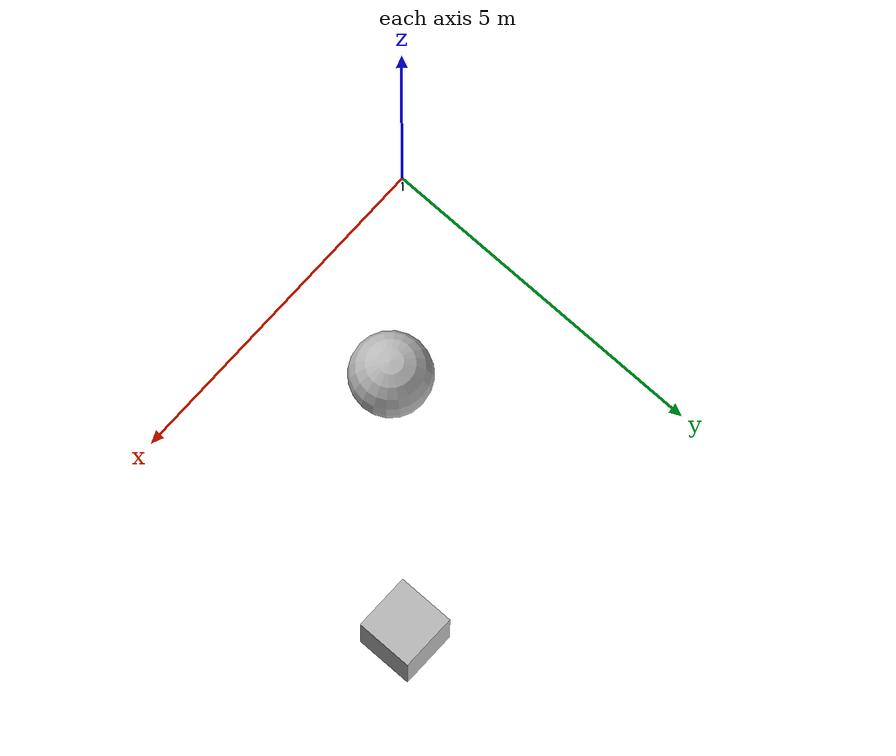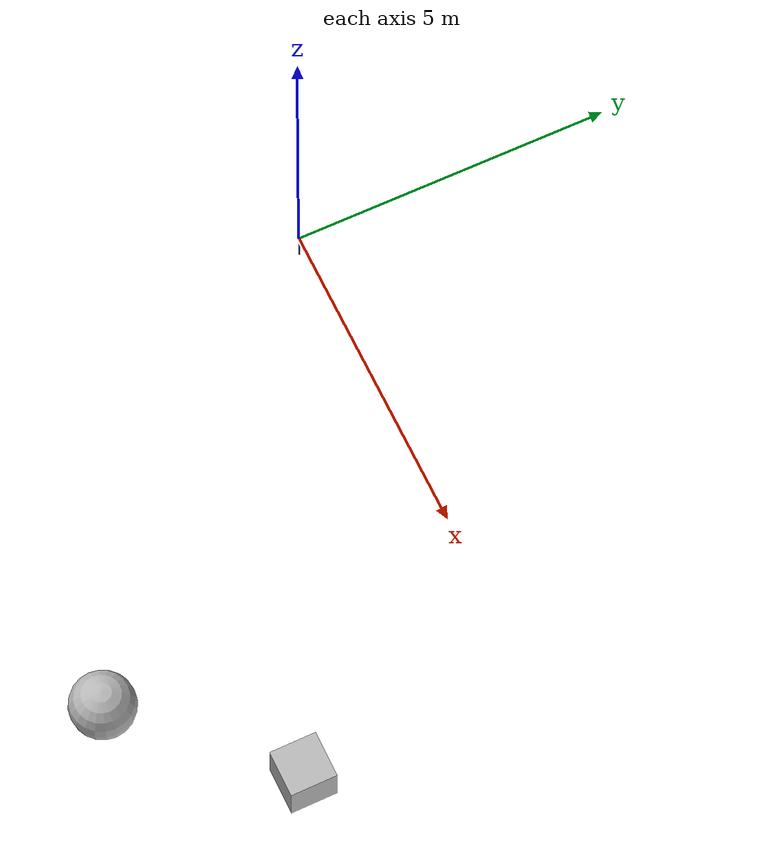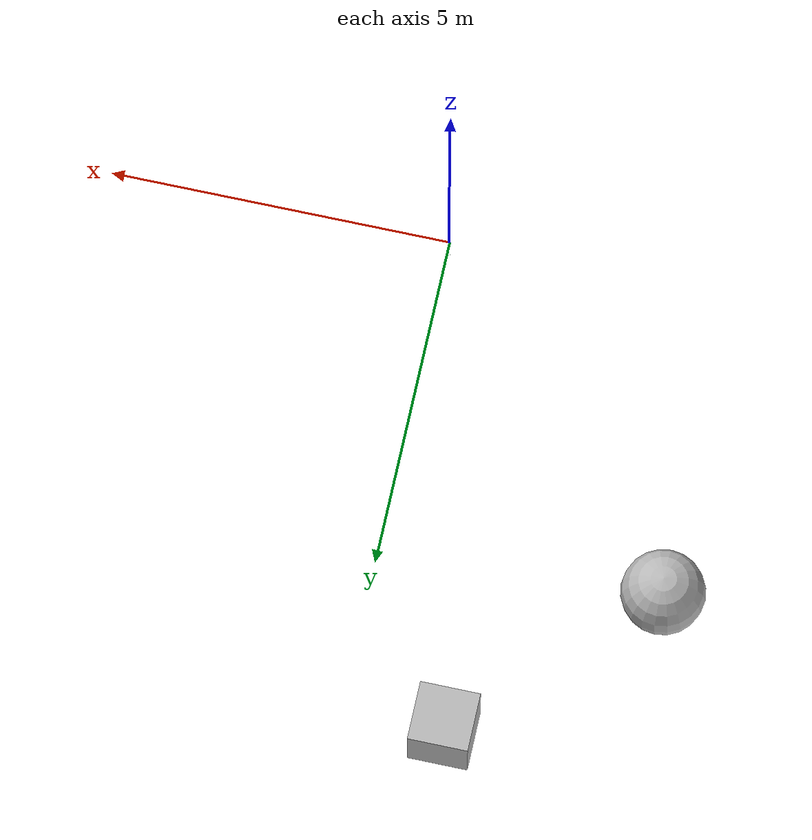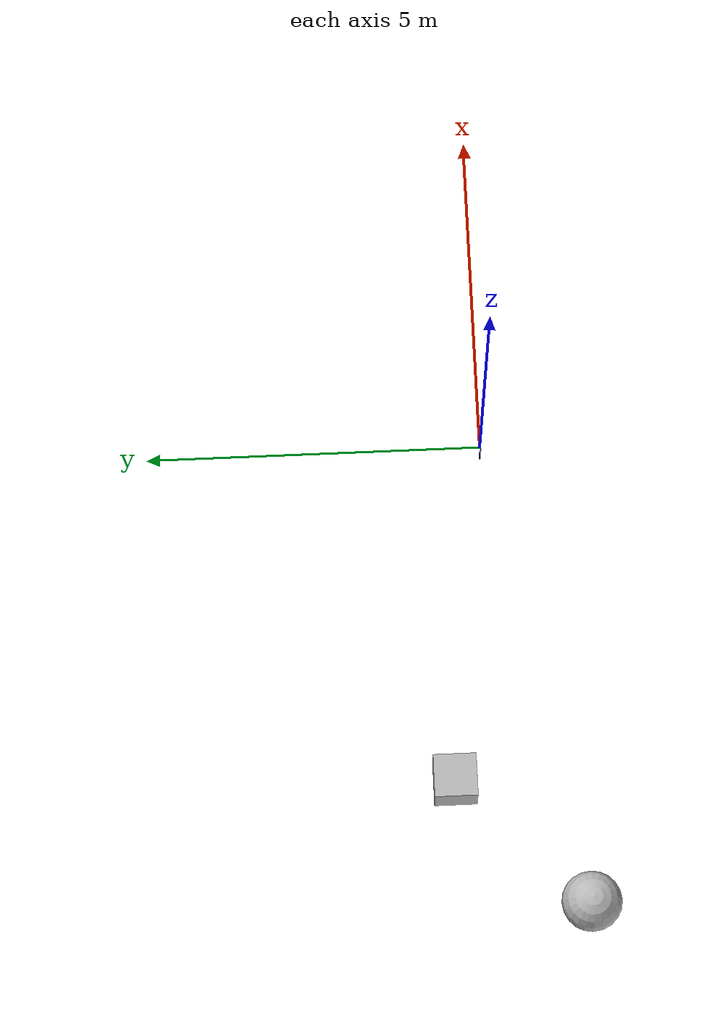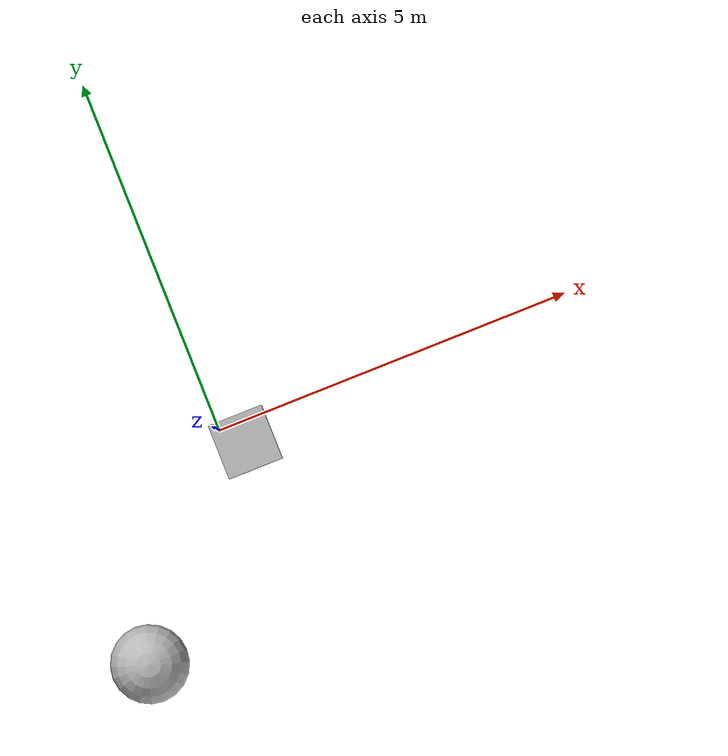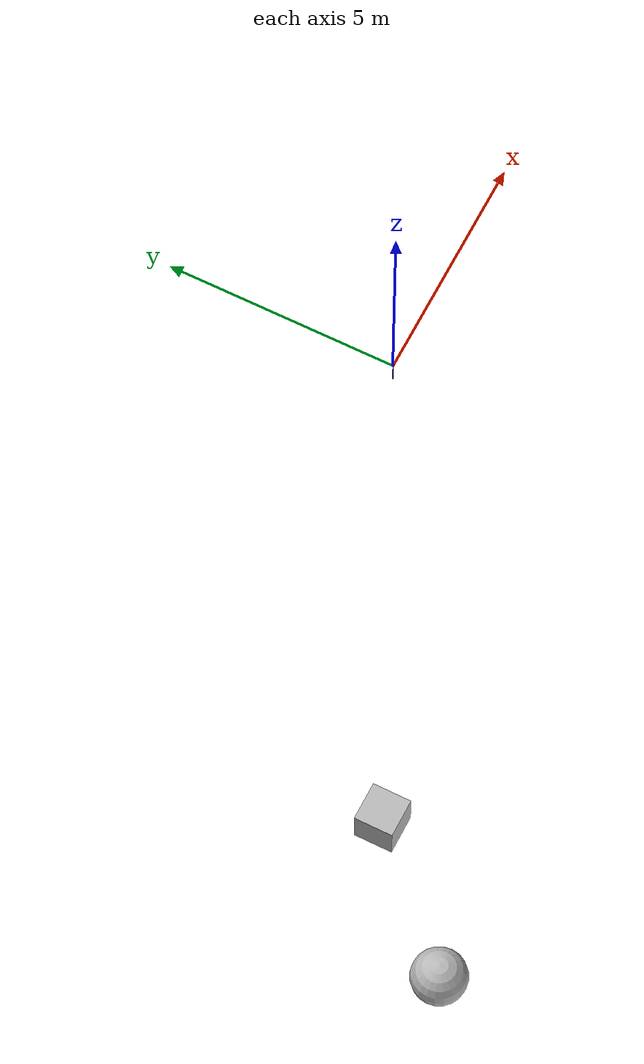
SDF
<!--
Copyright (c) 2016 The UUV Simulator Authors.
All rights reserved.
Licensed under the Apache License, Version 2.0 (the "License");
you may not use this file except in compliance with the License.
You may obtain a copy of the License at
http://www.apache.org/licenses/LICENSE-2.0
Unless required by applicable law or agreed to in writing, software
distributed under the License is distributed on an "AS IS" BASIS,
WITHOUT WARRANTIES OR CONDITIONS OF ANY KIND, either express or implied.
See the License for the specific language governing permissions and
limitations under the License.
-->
<sdf version="1.4">
 <world name="map">
  <physics name="default_physics" default="true" type="ode">
   <max_step_size>0.1</max_step_size>
   <real_time_factor>1</real_time_factor>
   <real_time_update_rate>10</real_time_update_rate>
   <ode><solver><type>quick</type><iters>20</iters><sor>1.4</sor></solver></ode>
  </physics>
  <gravity>0 0 0</gravity>
  <scene>
   <ambient>0.01 0.01 0.01 1.0</ambient>
   <sky><clouds><speed>12</speed></clouds></sky>
   <shadows>1</shadows>
  </scene>
  <model name="box">
   <pose>0 0 -22.5 0 0 0</pose>
   <link name="link">
    <collision name="collision"><geometry><box><size>1 1 1</size></box></geometry></collision>
    <visual name="visual"><geometry><box><size>1 1 1</size></box></geometry></visual>
   </link>
   <plugin name="usbl_transceiver" filename="libtransceiverPlugin.so">
    <namespace>USBL</namespace>
    <transponder_device>trasnponder_manufacturer</transponder_device>
    <transponder_ID>1</transponder_ID>
    <transceiver_device>tranceiver_manufacturer</transceiver_device>
    <transceiver_ID>168</transceiver_ID>
    <enable_ping_scheduler>false</enable_ping_scheduler>
    <transponder_attached_object>sphere</transponder_attached_object>
   </plugin>
   <plugin name="usbl_transponder" filename="libtransponderPlugin.so">
    <namespace>USBL</namespace>
    <transponder_device>trasnponder_manufacturer</transponder_device>
    <transponder_ID>1</transponder_ID>
    <transceiver_device>tranceiver_manufacturer</transceiver_device>
    <transceiver_ID>168</transceiver_ID>
    <mu>0</mu>
    <sigma>0.0</sigma>
   </plugin>
  </model>
  <model name="sphere">
   <pose>-3 -3 -22.5 0 0 0</pose>
   <link name="link">
    <collision name="collision"><geometry><sphere><radius>1</radius></sphere></geometry></collision>
    <visual name="visual"><geometry><sphere><radius>0.7</radius></sphere></geometry></visual>
   </link>
   <plugin name="usbl_transponder" filename="libtransponderPlugin.so">
    <namespace>USBL</namespace>
    <transponder_device>trasnponder_manufacturer</transponder_device>
    <transponder_ID>1</transponder_ID>
    <transceiver_device>tranceiver_manufacturer</transceiver_device>
    <transceiver_ID>168</transceiver_ID>
    <mu>0</mu>
    <sigma>0.0</sigma>
   </plugin>
  </model>
  <spherical_coordinates>
   <latitude_deg>56.71897669633431</latitude_deg>
   <longitude_deg>3.515625</longitude_deg>
  </spherical_coordinates>
  <light type="directional" name="sun1">
   <pose>50 0 150 0 0 0</pose>
   <diffuse>1 1 1 1</diffuse>
   <specular>.1 .1 .1 1</specular>
   <direction>0.3 0.3 -1</direction>
   <cast_shadows>false</cast_shadows>
  </light>
  <light type="directional" name="sun_diffuse">
   <pose>-50 0 -150 0 0 0</pose>
   <diffuse>0.6 0.6 0.6 1</diffuse>
   <specular>0 0 0 1</specular>
   <direction>-0.3 -0.3 -1</direction>
   <cast_shadows>false</cast_shadows>
  </light>
  <include><uri>model://ned_frame</uri></include>
  <plugin name="underwater_current_plugin" filename="libdave_ocean_current_plugin.so">
   <namespace>hydrodynamics</namespace>
   <constant_current>
    <topic>current_velocity</topic>
    <velocity><mean>0</mean><min>0</min><max>5</max><mu>0.0</mu><noiseAmp>0.0</noiseAmp></velocity>
    <horizontal_angle>
     <mean>0</mean>
     <min>-3.141592653589793238</min>
     <max>3.141592653589793238</max>
     <mu>0.0</mu>
     <noiseAmp>0.0</noiseAmp>
    </horizontal_angle>
    <vertical_angle>
     <mean>0</mean>
     <min>-3.141592653589793238</min>
     <max>3.141592653589793238</max>
     <mu>0.0</mu>
     <noiseAmp>0.0</noiseAmp>
    </vertical_angle>
   </constant_current>
   <transient_current>
    <topic_stratified_database>stratified_current_velocity_database</topic_stratified_database>
    <databasefilePath>transientOceanCurrentDatabase.csv</databasefilePath>
   </transient_current>
   <tidal_oscillation>
    <databasefilePath>ACT1951_1_Annual_2021.csv</databasefilePath>
    <mean_direction><ebb>69</ebb><flood>255</flood></mean_direction>
    <world_start_time_GMT>
     <day>4</day>
     <month>3</month>
     <year>2021</year>
     <hour>15</hour>
     <minute>0</minute>
    </world_start_time_GMT>
   </tidal_oscillation>
  </plugin>
  <plugin name="sc_interface" filename="libuuv_sc_ros_interface_plugin.so"/>
 </world>
</sdf>

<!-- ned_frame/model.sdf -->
<sdf version='1.5'>
    <model name="world_ned">

      <pose>0 0 0 0 0 0</pose>
      <static>true</static>

      <link name="world_ned">
        <gravity>0</gravity>
        <pose>0 0 0 3.14159265359 0 1.5707963267948966</pose>

        <visual name="N_visual">
          <pose>0.25 0 0 1.5707963267948966 0 1.5707963267948966</pose>
          <geometry>
            <cylinder>
              <radius>0.01</radius>
              <length>0.5</length>
            </cylinder>
          </geometry>
          <material>
            <script>
              <uri>file://media/materials/scripts/gazebo.material</uri>
              <name>Gazebo/Red</name>
            </script>
          </material>
        </visual>

        <visual name="E_visual">
          <pose>0 0.25 0 1.5707963267948966 0 0</pose>
          <geometry>
            <cylinder>
              <radius>0.01</radius>
              <length>0.5</length>
            </cylinder>
          </geometry>
          <material>
            <script>
              <uri>file://media/materials/scripts/gazebo.material</uri>
              <name>Gazebo/Green</name>
            </script>
          </material>
        </visual>

        <visual name="D_visual">
          <pose>0 0 0.25 0 0 0</pose>
          <geometry>
            <cylinder>
              <radius>0.01</radius>
              <length>0.5</length>
            </cylinder>
          </geometry>
          <material>
            <script>
              <uri>file://media/materials/scripts/gazebo.material</uri>
              <name>Gazebo/Blue</name>
            </script>
          </material>
        </visual>
      </link>
    </model>
</sdf>
